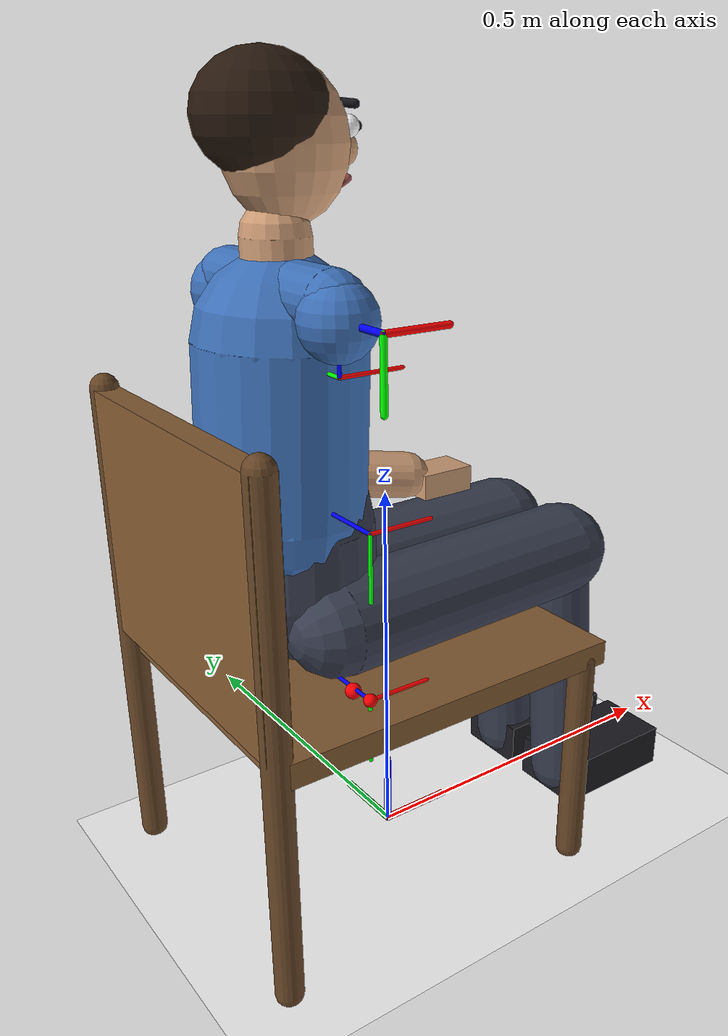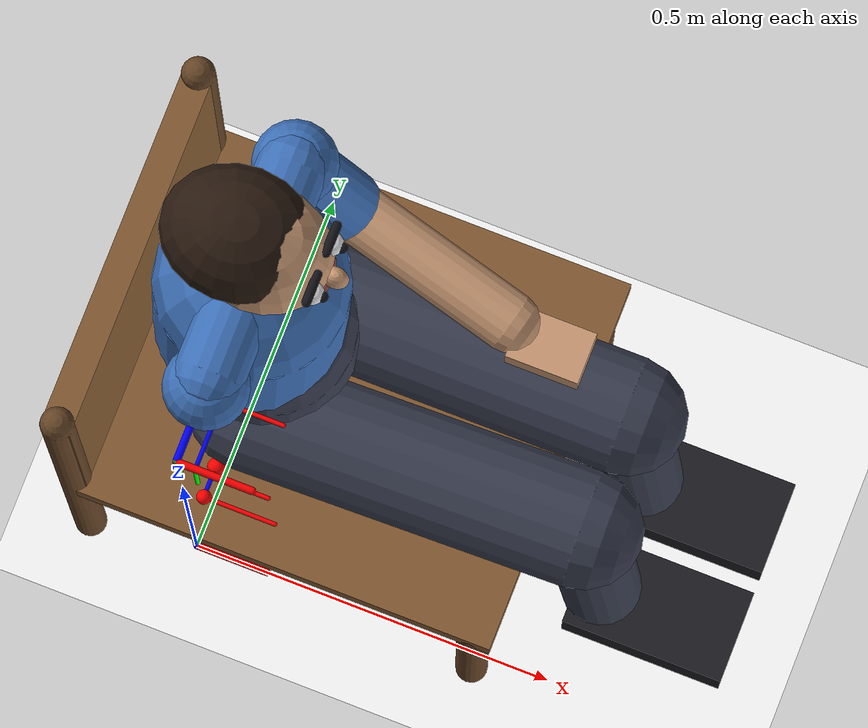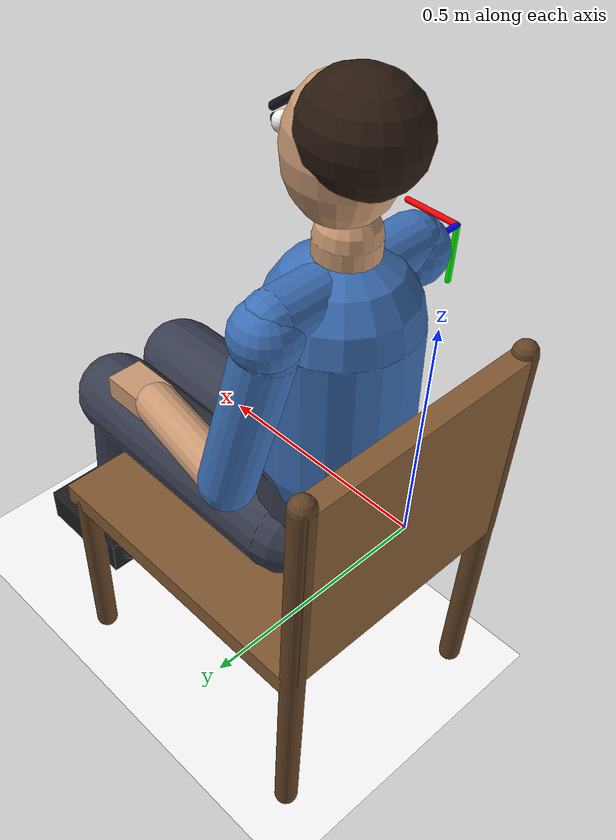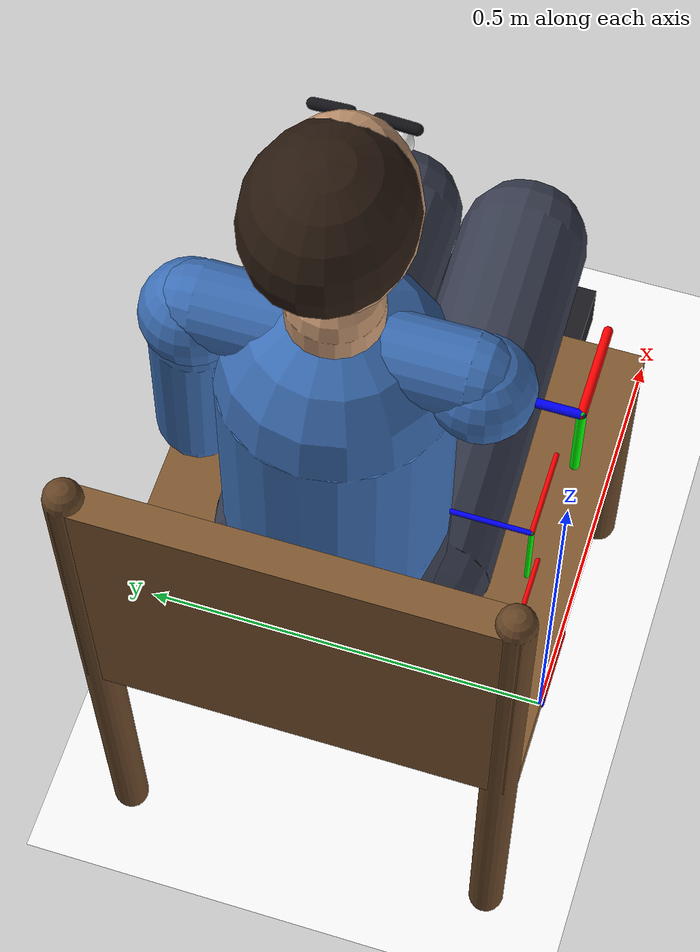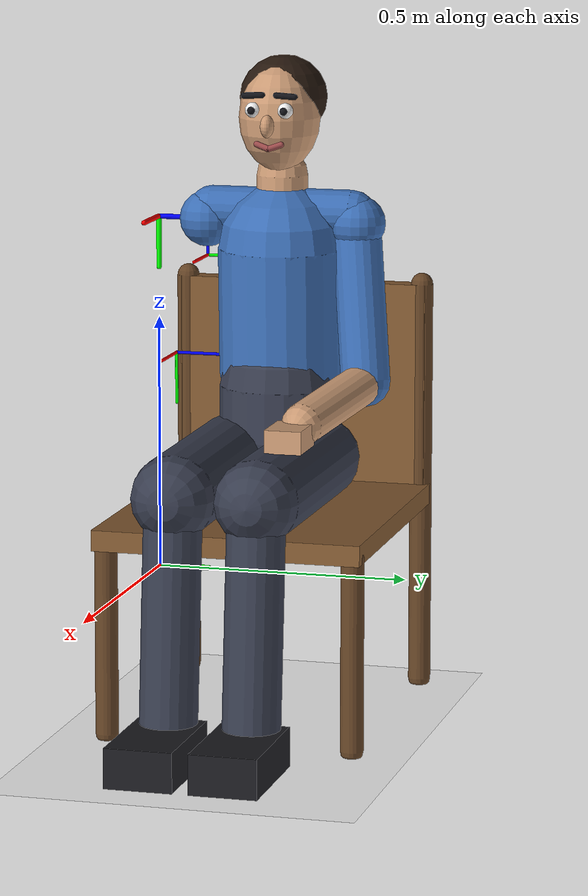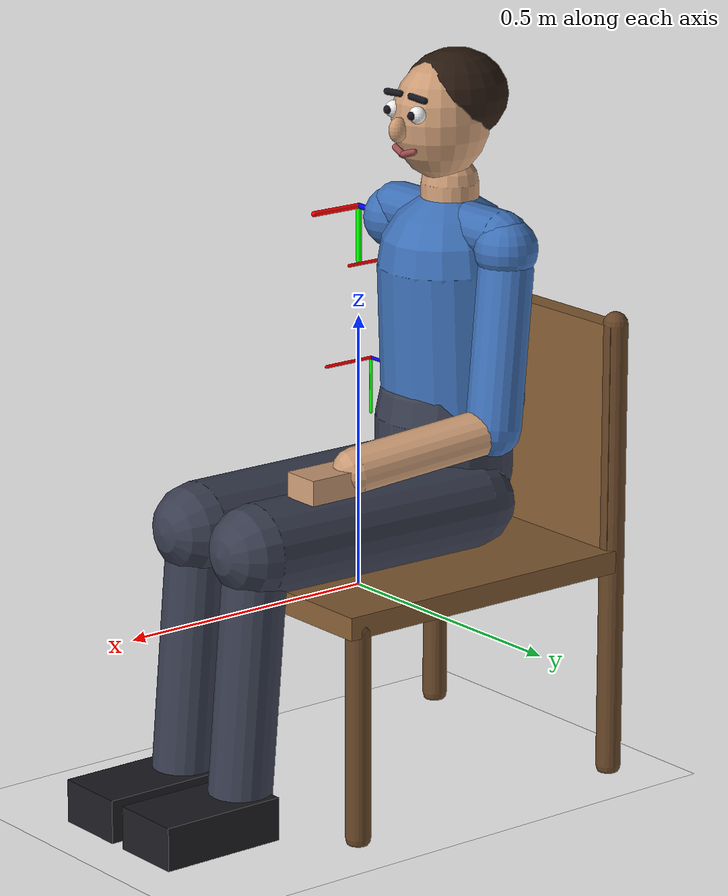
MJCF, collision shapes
<mujoco model="upper_limb_exo_with_human_arm">

    <option gravity="0 0 -9.81" />
    <compiler angle="degree" meshdir="meshes/" autolimits="true" />
    <option timestep="0.001"></option>     <!-- time step for simulations  -->

    <default>
        <geom type="mesh" />

        <default class="visual">
            <geom contype="0" conaffinity="0" group="0" density="0" rgba="0.5 0.5 0.5 1" />
        </default>
        <default class="transparent">
            <geom contype="0" conaffinity="0" group="0" density="0" rgba="0.5 0.5 0.5 0.3" />
        </default>

        <!-- armature 값: "AK109": 0.00812, "AK7010": 0.00414, "AK606": 0.00088. damping/frictionloss 는 0. -->
        <default class="AK109_actuator">
            <joint damping="0" armature="0" frictionloss="0" />
        </default>
        <default class="AK7010_actuator">
            <joint damping="0" armature="0" frictionloss="0" />
        </default>
        <default class="AK606_actuator">
            <joint damping="0" armature="0" frictionloss="0" />
        </default>

        <!-- 사람/의자 장식용: 물리 무영향 -->
        <default class="deco">
            <geom contype="0" conaffinity="0" group="2" density="0"/>
        </default>
    </default>

    <!--   Fusion outputs meshes with mm units by default, but must be converted to m in MuJoCo, hence
    the scaling   -->
    <asset>
        <mesh name="link0" file="new_design/link0.stl" scale="0.001 0.001 0.001" />
        <mesh name="link1" file="new_design/link1.stl" scale="0.001 0.001 0.001" />
        <mesh name="link2" file="new_design/link2.stl" scale="0.001 0.001 0.001" />
        <mesh name="link3" file="new_design/link3.stl" scale="0.001 0.001 0.001" />
        <!-- dummy 팔 메시: z(길이)만 스케일해 실제 분절 길이에 맞춤(겹침 제거).
             상완 380→270mm(×0.711), 전완 360→260mm(×0.722). 단면(굵기)은 원본 유지. -->
        <mesh name="dummy_upper_arm" file="new_design/dummy_upper_arm.stl" scale="0.001 0.001 0.000711" />
        <mesh name="dummy_lower_arm" file="new_design/dummy_lower_arm.stl" scale="0.001 0.001 0.000722" />

        <texture builtin="flat" height="100" rgb1="1 1 1" rgb2="1 1 1" type="skybox" width="100" />
        <texture name="texplane" type="2d" builtin="checker" rgb1=".2 .3 .4" rgb2=".1 0.15 0.2" width="100" height="100" />
        <material name="MatPlane" reflectance="0.1" texture="texplane" texrepeat="1 1" texuniform="true" />

        <!-- 사람/의자 재질 -->
        <material name="skin"  rgba="0.80 0.61 0.46 1"/>
        <material name="shirt" rgba="0.24 0.44 0.72 1"/>
        <material name="pants" rgba="0.22 0.24 0.31 1"/>
        <material name="shoe"  rgba="0.11 0.11 0.13 1"/>
        <material name="hair"  rgba="0.16 0.10 0.06 1"/>
        <material name="eyewhite" rgba="0.95 0.95 0.95 1"/>
        <material name="eyedark"  rgba="0.08 0.08 0.10 1"/>
        <material name="mouth"    rgba="0.62 0.30 0.30 1"/>
        <material name="wood"  rgba="0.52 0.36 0.20 1"/>
        <material name="wood2" rgba="0.40 0.27 0.15 1"/>
    </asset>

    <visual>
        <headlight diffuse="0.6 0.6 0.6" ambient="0.3 0.3 0.3" specular="0 0 0" />
        <rgba haze="1 1 1 1" /> <global azimuth="-90" elevation="-90" />
    </visual>

    <worldbody>
        <!-- ground 평면 z=-0.25: 고정 베이스 팔은 바닥에 닿지 않으므로 동역학/제어/최적화 무관.
             좌식 성인(어깨 world 0.7 m)이 바닥에 자연스럽게 앉도록 시각용으로 내림. -->
        <geom name="ground" pos="0 0 -0.25" size="5 5 0.05" type="plane" material="MatPlane"
            friction="1 1 0.1" condim="3" conaffinity="1" contype="1" group="2" rgba="1 1 1 1" />

        <light cutoff="1000" diffuse="1 1 1" dir="-0 0 -1.3" directional="true" exponent="1"
            pos="0 0 1.3" specular=".1 .1 .1" castshadow="false" />

        <!-- Coordinate axes -->
        <geom type="capsule" fromto="0 0 0 0.1 0 0" size="0.005" rgba="1 0 0 1"  contype="0" conaffinity="0"/>
        <geom type="capsule" fromto="0 0 0 0 0.1 0" size="0.005" rgba="0 1 0 1"  contype="0" conaffinity="0"/>
        <geom type="capsule" fromto="0 0 0 0 0 0.1" size="0.005" rgba="0 0 1 1"  contype="0" conaffinity="0"/>

        <!--   link0 -->
        <body name="link0" pos="0 0 0.7" euler="-90 0 0">
            <geom type="mesh" class="visual" mesh="link0" rgba="0.75 0.75 0.75 1"/>
            <inertial pos="-0.013E-03 0.011E-03 -29.442E-03"
                        mass="2797.101E-03"
                        fullinertia="2.158E-03 2.155E-03 3.143E-03 2134.574E-09 -791.755E-09 633.36E-09" />
                    <!-- Coordinate axes -->
            <geom type="capsule" fromto="0 0 0 0.1 0 0" size="0.005" rgba="1 0 0 1"  contype="0" conaffinity="0"/>
            <geom type="capsule" fromto="0 0 0 0 0.1 0" size="0.005" rgba="0 1 0 1"  contype="0" conaffinity="0"/>
            <geom type="capsule" fromto="0 0 0 0 0 0.1" size="0.005" rgba="0 0 1 1"  contype="0" conaffinity="0"/>

            <!--   link1 -->
            <body name="link1" pos="0 0 0" euler="0 0 0">
                <geom type="mesh" class="visual" mesh="link1" rgba="0.95 0.75 0.55 1"/>
                <inertial pos="0.01E-03 90.609E-03 -1.503E-03"
                            mass="1518.31E-03"
                            fullinertia="1.365E-03 8.234E-04 1.636E-03 -354.196E-09 681.552E-09 62766.752E-09" />

                <!-- range : physical limit -->
                <joint type="hinge" name="shoulder_pitch" axis="0 0 1" pos="0 0 0" range="-120 0"
                    class="AK109_actuator" />
                        <!-- Coordinate axes -->
                <geom type="capsule" fromto="0 0 0 0.1 0 0" size="0.005" rgba="1 0 0 1"  contype="0" conaffinity="0"/>
                <geom type="capsule" fromto="0 0 0 0 0.1 0" size="0.005" rgba="0 1 0 1"  contype="0" conaffinity="0"/>
                <geom type="capsule" fromto="0 0 0 0 0 0.1" size="0.005" rgba="0 0 1 1"  contype="0" conaffinity="0"/>

                            <!--   link2 -->
                <body name="link2" pos="0 72.73E-03 100E-03" euler="90 0 0">
                    <geom type="mesh" class="visual" mesh="link2" rgba="0.6 0.85 0.7 1"/>
                    <inertial pos="-3.593E-3 -76.373E-3 -155.796E-3"
                                mass="2718.741E-3"
                                fullinertia="1.741E-02 1.798E-02 3.978E-03 6.799E-04 1.131E-03 -3.609E-03" />
                    <joint type="hinge" name="shoulder_yaw" axis="0 0 1" pos="0 0 0" range="-5 90"
                        class="AK606_actuator" />
                            <!-- Coordinate axes -->
                    <geom type="capsule" fromto="0 0 0 0.1 0 0" size="0.003" rgba="1 0 0 1"  contype="0" conaffinity="0"/>
                    <geom type="capsule" fromto="0 0 0 0 0.1 0" size="0.003" rgba="0 1 0 1"  contype="0" conaffinity="0"/>
                    <geom type="capsule" fromto="0 0 0 0 0 0.1" size="0.003" rgba="0 0 1 1"  contype="0" conaffinity="0"/>

                            <!--   link3 -->
                    <body name="link3" pos="-1.125E-09 -64.944E-03 -196.15E-03" euler="-90 0 0">
                        <geom type="mesh" class="visual" mesh="link3" rgba="0.7 0.7 0.9 1"/>
                        <inertial pos="-5.289E-08 121.422E-03 -1.713E-03"
                                    mass="235.178E-03"
                                    fullinertia="7.489E-04 61324.892E-09 7.968E-04 0.518E-09 -0.094E-09 3826.504E-09" />

                        <!-- elbow range +90deg is not realistic ??-->
                        <joint type="hinge" name="elbow" axis="0 0 1" pos="0 0 0" range="-100 0"
                            class="AK7010_actuator" />

                            <!-- Coordinate axes -->
                        <geom type="capsule" fromto="0 0 0 0.1 0 0" size="0.003" rgba="1 0 0 1"  contype="0" conaffinity="0"/>
                        <geom type="capsule" fromto="0 0 0 0 0.1 0" size="0.003" rgba="0 1 0 1"  contype="0" conaffinity="0"/>
                        <geom type="capsule" fromto="0 0 0 0 0 0.1" size="0.003" rgba="0 0 1 1"  contype="0" conaffinity="0"/>

                        <site name="end_effector" pos="0 255.699E-03 6.00E-03" size="0.01" rgba="1 0 0 1" />

                            <!-- Coordinate axes -->
                            <geom type="capsule" fromto="0 255.699E-03 6.00E-03 0.1 255.699E-03 6.00E-03" size="0.003" rgba="1 0 0 1" contype="0" conaffinity="0"/>
                            <geom type="capsule" fromto="0 255.699E-03 6.00E-03 0 355.699E-03 6.00E-03" size="0.003" rgba="0 1 0 1" contype="0" conaffinity="0"/>
                            <geom type="capsule" fromto="0 255.699E-03 6.00E-03 0 255.699E-03 106.00E-03" size="0.003" rgba="0 0 1 1" contype="0" conaffinity="0"/>
                    </body>
                </body>
            </body>
        </body>

        <!-- ===================== 사람 (H≈1.60 m, 좌식) ===================== -->
        <!-- pos y=-0.04: 사람의 *오른쪽 어깨*(local 0,0.04,0)를 로봇 어깨(world 0,0,0.7)에 일치시켜
             외골격을 실제로 착용한 것처럼 정렬. (원본 시각화용 +0.12 오프셋에서 -0.16 이동) -->
        <body name="human" pos="0 0.06 0.7" childclass="deco">
            <inertial pos="0 0.19 -0.25" mass="1" diaginertia="0.01 0.01 0.01"/>

            <!-- 목 / 머리 / 머리카락 -->
            <geom type="capsule" fromto="0 0.19 0.01  0 0.19 0.09" size="0.05" material="skin"/>
            <geom type="ellipsoid" pos="0.02 0.19 0.205" size="0.090 0.078 0.105" material="skin"/>
            <geom type="ellipsoid" pos="-0.01 0.19 0.24" size="0.097 0.084 0.082" material="hair"/>
            <!-- 얼굴 표정 (머리 앞면 +X). 눈/눈썹/코/미소 -->
            <geom type="sphere" pos="0.098 0.158 0.225" size="0.015"  material="eyewhite"/>
            <geom type="sphere" pos="0.098 0.222 0.225" size="0.015"  material="eyewhite"/>
            <geom type="sphere" pos="0.111 0.158 0.225" size="0.0075" material="eyedark"/>
            <geom type="sphere" pos="0.111 0.222 0.225" size="0.0075" material="eyedark"/>
            <geom type="capsule" fromto="0.098 0.140 0.252  0.098 0.176 0.254" size="0.006" material="eyedark"/>
            <geom type="capsule" fromto="0.098 0.204 0.254  0.098 0.240 0.252" size="0.006" material="eyedark"/>
            <geom type="ellipsoid" pos="0.114 0.19 0.196" size="0.018 0.013 0.022" material="skin"/>
            <!-- 입 (미소) -->
            <geom type="capsule" fromto="0.100 0.166 0.160  0.104 0.190 0.152" size="0.006" material="mouth"/>
            <geom type="capsule" fromto="0.104 0.190 0.152  0.100 0.214 0.160" size="0.006" material="mouth"/>

            <!-- 어깨 (deltoid) + 승모근 경사 -->
            <geom type="sphere"  pos="0 0.04 0"   size="0.055" material="shirt"/>
            <geom type="sphere"  pos="0 0.34 0"   size="0.055" material="shirt"/>
            <geom type="capsule" fromto="0 0.05 0.02  0 0.33 0.02" size="0.045" material="shirt"/>

            <!-- 몸통: capsule (가슴(shirt)+골반(pants)) -->
            <geom type="capsule" fromto="-0.01 0.19 -0.30  0.00 0.19 -0.05" size="0.125" material="shirt"/>
            <geom type="capsule" fromto="0.01 0.19 -0.42  0.01 0.19 -0.32"  size="0.120" material="pants"/>

            <!-- 왼팔 (오른팔 = 외골격이므로 생략) -->
            <geom type="capsule" fromto="0 0.34 -0.03  0.05 0.37 -0.30" size="0.048" material="shirt"/>
            <geom type="capsule" fromto="0.05 0.37 -0.30  0.30 0.31 -0.34" size="0.040" material="skin"/>
            <geom type="box" pos="0.36 0.30 -0.355" size="0.050 0.035 0.022" material="skin"/>

            <!-- 허벅지 -->
            <geom type="capsule" fromto="0.02 0.10 -0.46  0.48 0.11 -0.455" size="0.080" material="pants"/>
            <geom type="capsule" fromto="0.02 0.27 -0.46  0.48 0.27 -0.455" size="0.080" material="pants"/>
            <!-- 정강이 (무릎 → 발목) -->
            <geom type="capsule" fromto="0.48 0.11 -0.455  0.52 0.11 -0.91" size="0.055" material="pants"/>
            <geom type="capsule" fromto="0.48 0.27 -0.455  0.52 0.27 -0.91" size="0.055" material="pants"/>
            <!-- 발 (신발) -->
            <geom type="box" pos="0.60 0.11 -0.915" size="0.115 0.065 0.04" material="shoe"/>
            <geom type="box" pos="0.60 0.27 -0.915" size="0.115 0.065 0.04" material="shoe"/>
        </body>

        <!-- ===================== 의자 ===================== -->
        <body name="chair" pos="0 0.06 0.7" childclass="deco">
            <inertial pos="0.20 0.19 -0.6" mass="1" diaginertia="0.01 0.01 0.01"/>
            <!-- 좌판 -->
            <geom type="box" pos="0.125 0.19 -0.56" size="0.295 0.26 0.02" material="wood"/>
            <!-- 등받이 -->
            <geom type="box" pos="-0.17 0.19 -0.34" size="0.02 0.25 0.20" material="wood"/>
            <!-- 앞다리 2 -->
            <geom type="capsule" fromto="0.39 -0.05 -0.57  0.39 -0.05 -0.94" size="0.022" material="wood2"/>
            <geom type="capsule" fromto="0.39 0.43 -0.57  0.39 0.43 -0.94" size="0.022" material="wood2"/>
            <!-- 뒷기둥 2 = 다리 + 등받이 지지 -->
            <geom type="capsule" fromto="-0.17 -0.05 -0.94  -0.17 -0.05 -0.14" size="0.022" material="wood2"/>
            <geom type="capsule" fromto="-0.17 0.43 -0.94  -0.17 0.43 -0.14" size="0.022" material="wood2"/>
        </body>

        <!-- 어깨 굴곡 피벗 = 실제 어깨(0,0.10,0.70). 외골격 flexion 축(0,0,0.7)과 같은 Y선상이라
             굴곡 동작은 동일하고, geometry 가 어깨에 자연히 매달림. -->
        <body name="human_R_upperarm" pos="0 0.085 0.70">
            <joint name="h_shoulder_flex" type="hinge" axis="0 1 0" pos="0 0 0"/>
            <!-- 상완 dummy(스케일됨): 어깨(0.70)~팔꿈치(0.43) 정렬, 중심 world z≈0.565 -->
            <geom type="mesh" mesh="dummy_upper_arm" pos="0 0 -0.135" euler="0 0 0"
                  density="1125" contype="0" conaffinity="0" rgba="0.85 0.65 0.50 0.6"/>
            <body name="human_R_forearm" pos="0 0 -0.27">
                <joint name="h_elbow_flex" type="hinge" axis="0 1 0" pos="0 0 0"/>
                <!-- 전완 dummy(스케일됨): 팔꿈치(0.43)~손목(0.17) 정렬, 중심 world z≈0.30 -->
                <geom type="mesh" mesh="dummy_lower_arm" pos="0 0 -0.13" euler="0 0 0"
                      density="1180" contype="0" conaffinity="0" rgba="0.85 0.65 0.50 0.6"/>
                <!-- 커프/측정 지점 = 손목 (world ≈ 0,0.10,0.17). 로봇 link3 와 weld='브래킷' -->
                <site name="cuff_R" pos="0 0 -0.26" size="0.012" rgba="1 0 0 1"/>
            </body>
        </body>
    </worldbody>

    <!-- 오른팔 전완 ↔ 로봇 link3 강체 결합 (cuff 이상화).
         relpose 기본 → qpos0 의 상대자세(겹친 상태) 유지. anchor 는 body1(전완) 로컬 손목점.
         상호작용력은 data.qfrc_constraint(weld 구속력)로 읽는 것이 가장 견고. -->

    <equality>
        <weld body1="human_R_forearm" body2="link3" anchor="0 0 -0.26"
              solref="0.05 1" solimp="0.9 0.95 0.001"/>
    </equality>

    <!-- cuff 지점 6축 F/T 참고용 센서 (해석은 qfrc_constraint 와 교차검증). -->
    <sensor>
        <force  site="cuff_R"/>
        <torque site="cuff_R"/>
    </sensor>

    <!-- torque control -->
    <actuator>
        <motor name="act_shoulder_pitch" joint="shoulder_pitch" forcerange="-48 48"/>
        <motor name="act_shoulder_yaw" joint="shoulder_yaw" forcerange="-9 9"/>
        <motor name="act_elbow" joint="elbow" forcerange="-24.8 24.8"/>
    </actuator>

    <!-- 자연스러운 착석 자세(전완을 허벅지 쪽으로 굽힘) → 좌판 관통 방지.
         qpos 순서: shoulder_pitch, shoulder_yaw, elbow, h_shoulder_flex, h_elbow_flex.
         외골격·인체 굴곡각을 동일하게 줘서 weld 정합 유지. 뷰어에서 이 key 를 로드해 사용. -->
    <keyframe>
        <key name="seated" qpos="-0.3 0 -1.5 -0.3 -1.5"/>
    </keyframe>

</mujoco>
